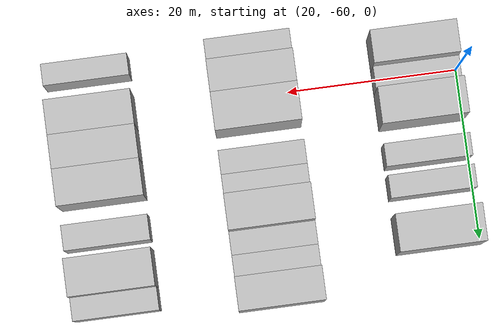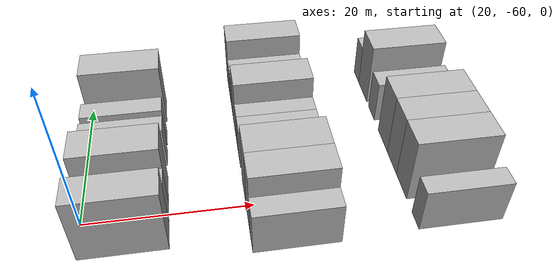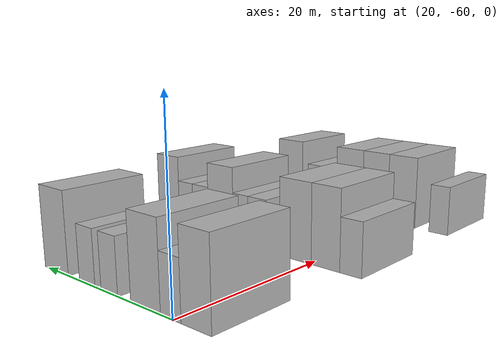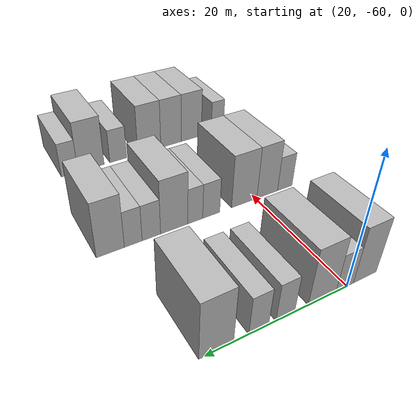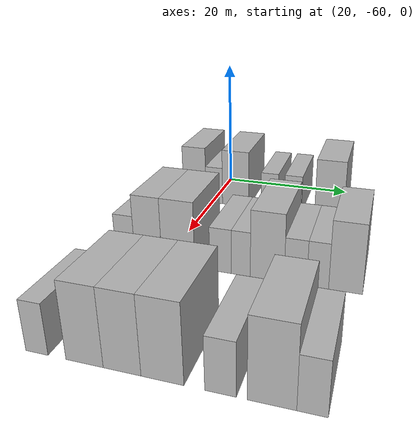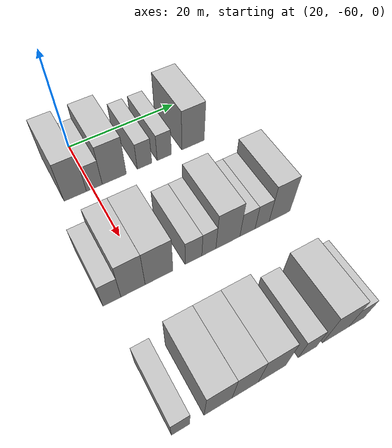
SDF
<sdf version="1.6">
 <world name="default">
  <model name="building_47">
   <static>1</static>
   <pose>25.0000 -62.9381 0 0.000000 0.000000 0.000000</pose>
   <link name="link">
    <pose>0 0 4.50 0 0 0</pose>
    <collision name="collision"><geometry><box><size>10.0000 3.8106 9.0000</size></box></geometry></collision>
    <visual name="visual">
     <cast_shadows>0</cast_shadows>
     <geometry><box><size>10.0000 3.8106 9.0000</size></box></geometry>
     <material>
      <script>
       <uri>model://HANNAS_wall/materials/scripts</uri>
       <uri>model://HANNAS_wall/materials/textures</uri>
       <name>vrc/HANNAS_wall</name>
      </script>
     </material>
    </visual>
   </link>
  </model>
  <model name="building_48">
   <static>1</static>
   <pose>25.0000 -59.6556 0 0.000000 0.000000 0.000000</pose>
   <link name="link">
    <pose>0 0 3.00 0 0 0</pose>
    <collision name="collision"><geometry><box><size>10.0000 2.7545 6.0000</size></box></geometry></collision>
    <visual name="visual">
     <cast_shadows>0</cast_shadows>
     <geometry><box><size>10.0000 2.7545 6.0000</size></box></geometry>
     <material>
      <script>
       <uri>model://HANNAS_wall/materials/scripts</uri>
       <uri>model://HANNAS_wall/materials/textures</uri>
       <name>vrc/HANNAS_wall</name>
      </script>
     </material>
    </visual>
   </link>
  </model>
  <model name="building_49">
   <static>1</static>
   <pose>25.0000 -56.1381 0 0.000000 0.000000 0.000000</pose>
   <link name="link">
    <pose>0 0 4.50 0 0 0</pose>
    <collision name="collision"><geometry><box><size>10.0000 4.2806 9.0000</size></box></geometry></collision>
    <visual name="visual">
     <cast_shadows>0</cast_shadows>
     <geometry><box><size>10.0000 4.2806 9.0000</size></box></geometry>
     <material>
      <script>
       <uri>model://HANNAS_wall/materials/scripts</uri>
       <uri>model://HANNAS_wall/materials/textures</uri>
       <name>vrc/HANNAS_wall</name>
      </script>
     </material>
    </visual>
   </link>
  </model>
  <model name="building_50">
   <static>1</static>
   <pose>25.0000 -50.6639 0 0.000000 0.000000 0.000000</pose>
   <link name="link">
    <pose>0 0 3.00 0 0 0</pose>
    <collision name="collision"><geometry><box><size>10.0000 2.6677 6.0000</size></box></geometry></collision>
    <visual name="visual">
     <cast_shadows>0</cast_shadows>
     <geometry><box><size>10.0000 2.6677 6.0000</size></box></geometry>
     <material>
      <script>
       <uri>model://HANNAS_wall/materials/scripts</uri>
       <uri>model://HANNAS_wall/materials/textures</uri>
       <name>vrc/HANNAS_wall</name>
      </script>
     </material>
    </visual>
   </link>
  </model>
  <model name="building_51">
   <static>1</static>
   <pose>25.0000 -46.9879 0 0.000000 0.000000 0.000000</pose>
   <link name="link">
    <pose>0 0 3.00 0 0 0</pose>
    <collision name="collision"><geometry><box><size>10.0000 2.6842 6.0000</size></box></geometry></collision>
    <visual name="visual">
     <cast_shadows>0</cast_shadows>
     <geometry><box><size>10.0000 2.6842 6.0000</size></box></geometry>
     <material>
      <script>
       <uri>model://HANNAS_wall/materials/scripts</uri>
       <uri>model://HANNAS_wall/materials/textures</uri>
       <name>vrc/HANNAS_wall</name>
      </script>
     </material>
    </visual>
   </link>
  </model>
  <model name="building_52">
   <static>1</static>
   <pose>25.0000 -41.4606 0 0.000000 0.000000 0.000000</pose>
   <link name="link">
    <pose>0 0 4.50 0 0 0</pose>
    <collision name="collision"><geometry><box><size>10.0000 4.3704 9.0000</size></box></geometry></collision>
    <visual name="visual">
     <cast_shadows>0</cast_shadows>
     <geometry><box><size>10.0000 4.3704 9.0000</size></box></geometry>
     <material>
      <script>
       <uri>model://HANNAS_wall/materials/scripts</uri>
       <uri>model://HANNAS_wall/materials/textures</uri>
       <name>vrc/HANNAS_wall</name>
      </script>
     </material>
    </visual>
   </link>
  </model>
  <model name="building_161">
   <static>1</static>
   <pose>44.0000 -65.3536 0 0.000000 0.000000 0.000000</pose>
   <link name="link">
    <pose>0 0 3.00 0 0 0</pose>
    <collision name="collision"><geometry><box><size>10.0000 2.7334 6.0000</size></box></geometry></collision>
    <visual name="visual">
     <cast_shadows>0</cast_shadows>
     <geometry><box><size>10.0000 2.7334 6.0000</size></box></geometry>
     <material>
      <script>
       <uri>model://HANNAS_wall/materials/scripts</uri>
       <uri>model://HANNAS_wall/materials/textures</uri>
       <name>vrc/HANNAS_wall</name>
      </script>
     </material>
    </visual>
   </link>
  </model>
  <model name="building_162">
   <static>1</static>
   <pose>44.0000 -62.0944 0 0.000000 0.000000 0.000000</pose>
   <link name="link">
    <pose>0 0 4.50 0 0 0</pose>
    <collision name="collision"><geometry><box><size>10.0000 3.7851 9.0000</size></box></geometry></collision>
    <visual name="visual">
     <cast_shadows>0</cast_shadows>
     <geometry><box><size>10.0000 3.7851 9.0000</size></box></geometry>
     <material>
      <script>
       <uri>model://HANNAS_wall/materials/scripts</uri>
       <uri>model://HANNAS_wall/materials/textures</uri>
       <name>vrc/HANNAS_wall</name>
      </script>
     </material>
    </visual>
   </link>
  </model>
  <model name="building_163">
   <static>1</static>
   <pose>44.0000 -57.9683 0 0.000000 0.000000 0.000000</pose>
   <link name="link">
    <pose>0 0 4.50 0 0 0</pose>
    <collision name="collision"><geometry><box><size>10.0000 4.4669 9.0000</size></box></geometry></collision>
    <visual name="visual">
     <cast_shadows>0</cast_shadows>
     <geometry><box><size>10.0000 4.4669 9.0000</size></box></geometry>
     <material>
      <script>
       <uri>model://HANNAS_wall/materials/scripts</uri>
       <uri>model://HANNAS_wall/materials/textures</uri>
       <name>vrc/HANNAS_wall</name>
      </script>
     </material>
    </visual>
   </link>
  </model>
  <model name="building_164">
   <static>1</static>
   <pose>44.0000 -52.3275 0 0.000000 0.000000 0.000000</pose>
   <link name="link">
    <pose>0 0 3.00 0 0 0</pose>
    <collision name="collision"><geometry><box><size>10.0000 2.8148 6.0000</size></box></geometry></collision>
    <visual name="visual">
     <cast_shadows>0</cast_shadows>
     <geometry><box><size>10.0000 2.8148 6.0000</size></box></geometry>
     <material>
      <script>
       <uri>model://HANNAS_wall/materials/scripts</uri>
       <uri>model://HANNAS_wall/materials/textures</uri>
       <name>vrc/HANNAS_wall</name>
      </script>
     </material>
    </visual>
   </link>
  </model>
  <model name="building_165">
   <static>1</static>
   <pose>44.0000 -49.7195 0 0.000000 0.000000 0.000000</pose>
   <link name="link">
    <pose>0 0 3.00 0 0 0</pose>
    <collision name="collision"><geometry><box><size>10.0000 2.4013 6.0000</size></box></geometry></collision>
    <visual name="visual">
     <cast_shadows>0</cast_shadows>
     <geometry><box><size>10.0000 2.4013 6.0000</size></box></geometry>
     <material>
      <script>
       <uri>model://HANNAS_wall/materials/scripts</uri>
       <uri>model://HANNAS_wall/materials/textures</uri>
       <name>vrc/HANNAS_wall</name>
      </script>
     </material>
    </visual>
   </link>
  </model>
  <model name="building_166">
   <static>1</static>
   <pose>44.0000 -46.4094 0 0.000000 0.000000 0.000000</pose>
   <link name="link">
    <pose>0 0 4.50 0 0 0</pose>
    <collision name="collision"><geometry><box><size>10.0000 4.2188 9.0000</size></box></geometry></collision>
    <visual name="visual">
     <cast_shadows>0</cast_shadows>
     <geometry><box><size>10.0000 4.2188 9.0000</size></box></geometry>
     <material>
      <script>
       <uri>model://HANNAS_wall/materials/scripts</uri>
       <uri>model://HANNAS_wall/materials/textures</uri>
       <name>vrc/HANNAS_wall</name>
      </script>
     </material>
    </visual>
   </link>
  </model>
  <model name="building_167">
   <static>1</static>
   <pose>44.0000 -42.9314 0 0.000000 0.000000 0.000000</pose>
   <link name="link">
    <pose>0 0 3.00 0 0 0</pose>
    <collision name="collision"><geometry><box><size>10.0000 2.7372 6.0000</size></box></geometry></collision>
    <visual name="visual">
     <cast_shadows>0</cast_shadows>
     <geometry><box><size>10.0000 2.7372 6.0000</size></box></geometry>
     <material>
      <script>
       <uri>model://HANNAS_wall/materials/scripts</uri>
       <uri>model://HANNAS_wall/materials/textures</uri>
       <name>vrc/HANNAS_wall</name>
      </script>
     </material>
    </visual>
   </link>
  </model>
  <model name="building_168">
   <static>1</static>
   <pose>44.0000 -40.2771 0 0.000000 0.000000 0.000000</pose>
   <link name="link">
    <pose>0 0 3.00 0 0 0</pose>
    <collision name="collision"><geometry><box><size>10.0000 2.5714 6.0000</size></box></geometry></collision>
    <visual name="visual">
     <cast_shadows>0</cast_shadows>
     <geometry><box><size>10.0000 2.5714 6.0000</size></box></geometry>
     <material>
      <script>
       <uri>model://HANNAS_wall/materials/scripts</uri>
       <uri>model://HANNAS_wall/materials/textures</uri>
       <name>vrc/HANNAS_wall</name>
      </script>
     </material>
    </visual>
   </link>
  </model>
  <model name="building_169">
   <static>1</static>
   <pose>44.0000 -37.0267 0 0.000000 0.000000 0.000000</pose>
   <link name="link">
    <pose>0 0 4.50 0 0 0</pose>
    <collision name="collision"><geometry><box><size>10.0000 3.9295 9.0000</size></box></geometry></collision>
    <visual name="visual">
     <cast_shadows>0</cast_shadows>
     <geometry><box><size>10.0000 3.9295 9.0000</size></box></geometry>
     <material>
      <script>
       <uri>model://HANNAS_wall/materials/scripts</uri>
       <uri>model://HANNAS_wall/materials/textures</uri>
       <name>vrc/HANNAS_wall</name>
      </script>
     </material>
    </visual>
   </link>
  </model>
  <model name="building_280">
   <static>1</static>
   <pose>63.0000 -65.0676 0 0.000000 0.000000 0.000000</pose>
   <link name="link">
    <pose>0 0 3.00 0 0 0</pose>
    <collision name="collision"><geometry><box><size>10.0000 2.5289 6.0000</size></box></geometry></collision>
    <visual name="visual">
     <cast_shadows>0</cast_shadows>
     <geometry><box><size>10.0000 2.5289 6.0000</size></box></geometry>
     <material>
      <script>
       <uri>model://HANNAS_wall/materials/scripts</uri>
       <uri>model://HANNAS_wall/materials/textures</uri>
       <name>vrc/HANNAS_wall</name>
      </script>
     </material>
    </visual>
   </link>
  </model>
  <model name="building_281">
   <static>1</static>
   <pose>63.0000 -59.7835 0 0.000000 0.000000 0.000000</pose>
   <link name="link">
    <pose>0 0 4.50 0 0 0</pose>
    <collision name="collision"><geometry><box><size>10.0000 4.0393 9.0000</size></box></geometry></collision>
    <visual name="visual">
     <cast_shadows>0</cast_shadows>
     <geometry><box><size>10.0000 4.0393 9.0000</size></box></geometry>
     <material>
      <script>
       <uri>model://HANNAS_wall/materials/scripts</uri>
       <uri>model://HANNAS_wall/materials/textures</uri>
       <name>vrc/HANNAS_wall</name>
      </script>
     </material>
    </visual>
   </link>
  </model>
  <model name="building_282">
   <static>1</static>
   <pose>63.0000 -55.7984 0 0.000000 0.000000 0.000000</pose>
   <link name="link">
    <pose>0 0 4.50 0 0 0</pose>
    <collision name="collision"><geometry><box><size>10.0000 3.9308 9.0000</size></box></geometry></collision>
    <visual name="visual">
     <cast_shadows>0</cast_shadows>
     <geometry><box><size>10.0000 3.9308 9.0000</size></box></geometry>
     <material>
      <script>
       <uri>model://HANNAS_wall/materials/scripts</uri>
       <uri>model://HANNAS_wall/materials/textures</uri>
       <name>vrc/HANNAS_wall</name>
      </script>
     </material>
    </visual>
   </link>
  </model>
  <model name="building_283">
   <static>1</static>
   <pose>63.0000 -51.6942 0 0.000000 0.000000 0.000000</pose>
   <link name="link">
    <pose>0 0 4.50 0 0 0</pose>
    <collision name="collision"><geometry><box><size>10.0000 4.2776 9.0000</size></box></geometry></collision>
    <visual name="visual">
     <cast_shadows>0</cast_shadows>
     <geometry><box><size>10.0000 4.2776 9.0000</size></box></geometry>
     <material>
      <script>
       <uri>model://HANNAS_wall/materials/scripts</uri>
       <uri>model://HANNAS_wall/materials/textures</uri>
       <name>vrc/HANNAS_wall</name>
      </script>
     </material>
    </visual>
   </link>
  </model>
  <model name="building_284">
   <static>1</static>
   <pose>63.0000 -46.0727 0 0.000000 0.000000 0.000000</pose>
   <link name="link">
    <pose>0 0 3.00 0 0 0</pose>
    <collision name="collision"><geometry><box><size>10.0000 2.9654 6.0000</size></box></geometry></collision>
    <visual name="visual">
     <cast_shadows>0</cast_shadows>
     <geometry><box><size>10.0000 2.9654 6.0000</size></box></geometry>
     <material>
      <script>
       <uri>model://HANNAS_wall/materials/scripts</uri>
       <uri>model://HANNAS_wall/materials/textures</uri>
       <name>vrc/HANNAS_wall</name>
      </script>
     </material>
    </visual>
   </link>
  </model>
  <model name="building_285">
   <static>1</static>
   <pose>63.0000 -41.3872 0 0.000000 0.000000 0.000000</pose>
   <link name="link">
    <pose>0 0 4.50 0 0 0</pose>
    <collision name="collision"><geometry><box><size>10.0000 4.4054 9.0000</size></box></geometry></collision>
    <visual name="visual">
     <cast_shadows>0</cast_shadows>
     <geometry><box><size>10.0000 4.4054 9.0000</size></box></geometry>
     <material>
      <script>
       <uri>model://HANNAS_wall/materials/scripts</uri>
       <uri>model://HANNAS_wall/materials/textures</uri>
       <name>vrc/HANNAS_wall</name>
      </script>
     </material>
    </visual>
   </link>
  </model>
  <model name="building_286">
   <static>1</static>
   <pose>63.0000 -37.8307 0 0.000000 0.000000 0.000000</pose>
   <link name="link">
    <pose>0 0 3.00 0 0 0</pose>
    <collision name="collision"><geometry><box><size>10.0000 2.7076 6.0000</size></box></geometry></collision>
    <visual name="visual">
     <cast_shadows>0</cast_shadows>
     <geometry><box><size>10.0000 2.7076 6.0000</size></box></geometry>
     <material>
      <script>
       <uri>model://HANNAS_wall/materials/scripts</uri>
       <uri>model://HANNAS_wall/materials/textures</uri>
       <name>vrc/HANNAS_wall</name>
      </script>
     </material>
    </visual>
   </link>
  </model>
 </world>
</sdf>
